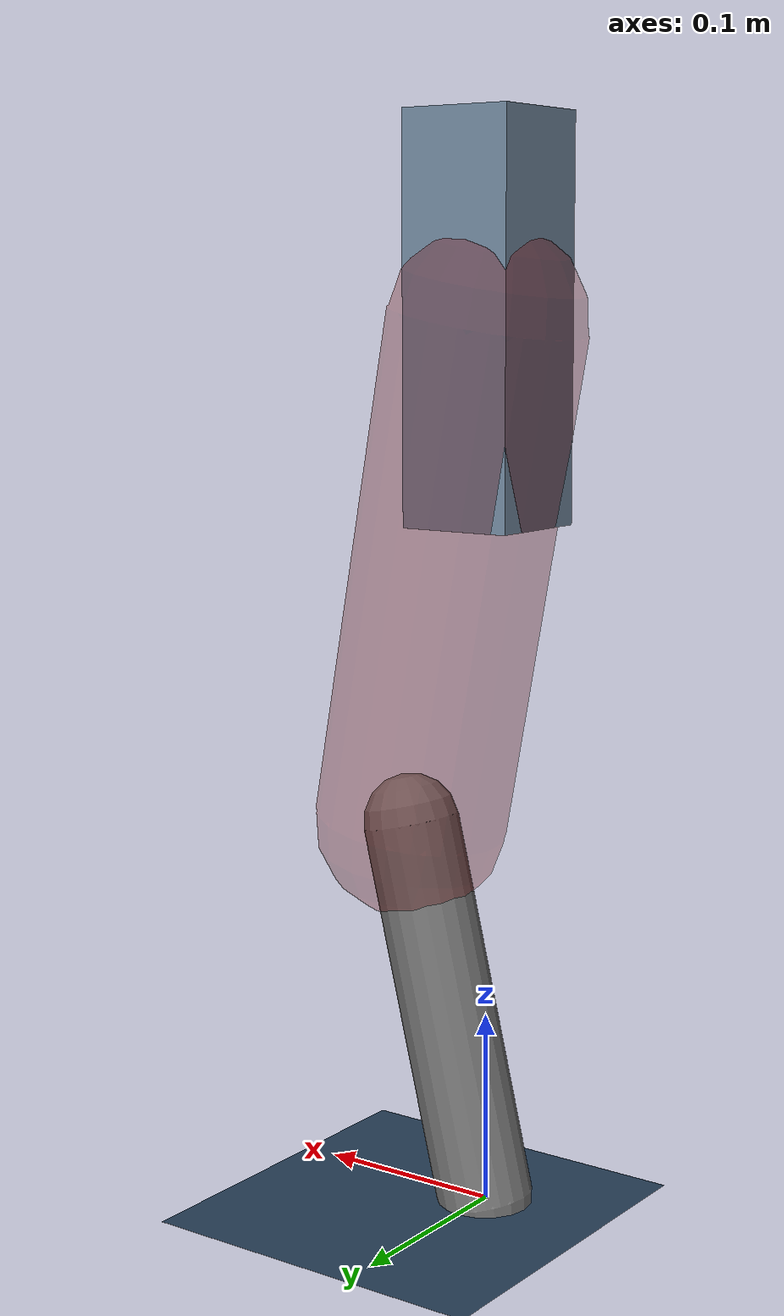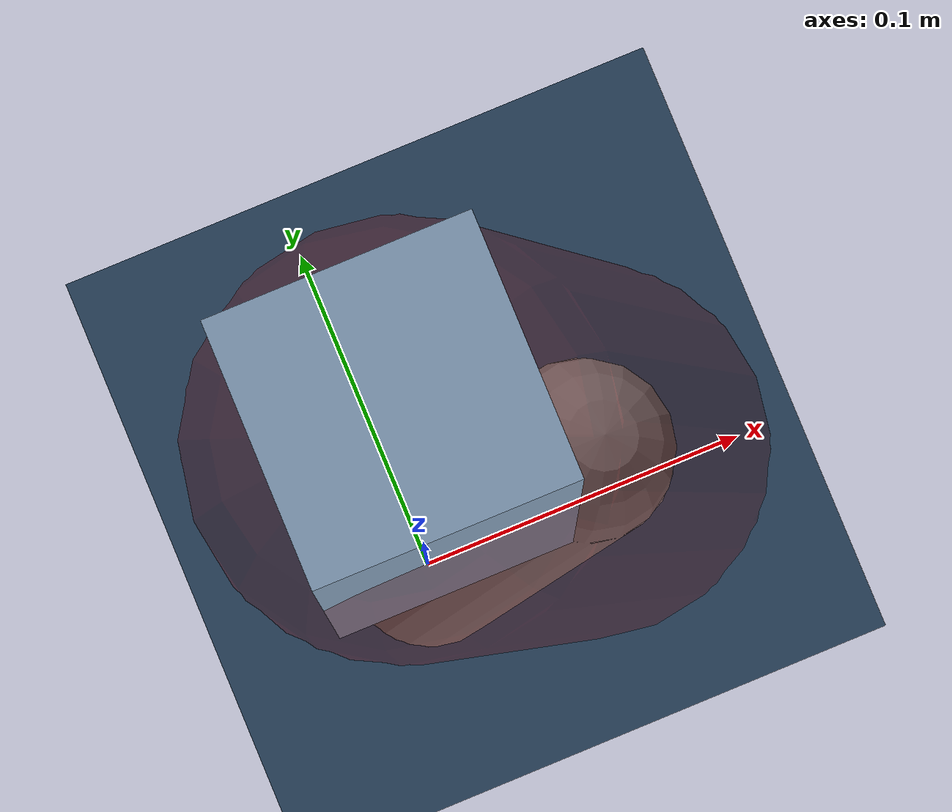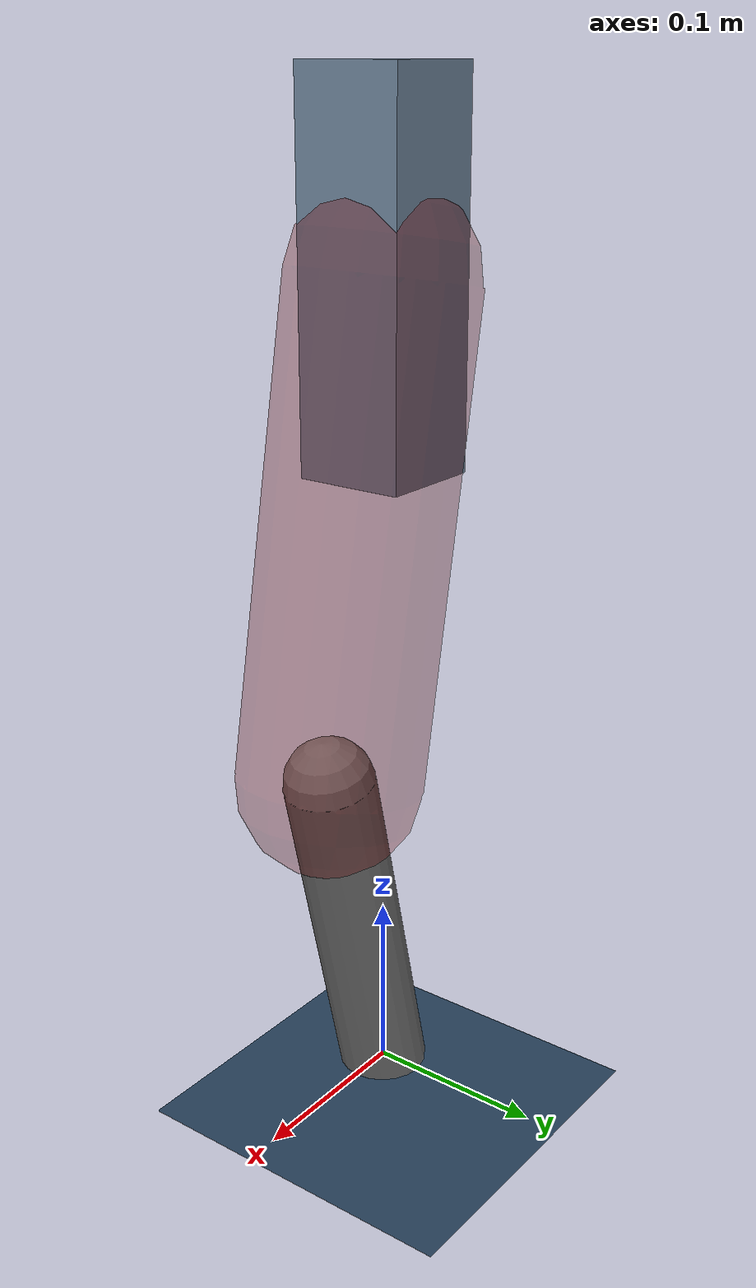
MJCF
<mujoco model="Hopper2D">
	<compiler inertiafromgeom="true" angle="radian" />
	<option timestep="0.001" integrator="implicit" cone="elliptic" solver="Newton" tolerance="1e-10" />

	<default>
		<geom contype="1" conaffinity="1" condim="3" friction="2 0.005 0.0001" solref="0.005 1" />
		<joint limited="true" damping="0.1" />
	</default>

	<asset>
		<texture name="skybox" type="skybox" builtin="gradient" rgb1=".4 .6 .8" rgb2="0 0 0" width="800" height="800" />
		<texture name="grid" type="2d" builtin="checker" rgb1=".1 .2 .3" rgb2=".2 .3 .4" width="300" height="300" mark="edge" markrgb=".2 .3 .4" />
		<material name="ground" texture="grid" texrepeat="1 1" texuniform="true" reflectance="0.1" />
		<material name="leg" rgba="0.5 0.6 0.7 1" />
	</asset>

	<worldbody>

		<geom name="floor" type="plane" size="5 5 0.25" material="ground" />

		<light directional="false" diffuse="0.8 0.8 0.8" specular="0.3 0.3 0.3" pos="0 0 2" dir="0 0 -1" />
		<light mode="targetbodycom" target="base" directional="false" diffuse="0.8 0.8 0.8" specular="0.3 0.3 0.3" pos="0 0 2" dir="0 0 -1" />

		<camera name="fixed" pos="0 -2 1" xyaxes="1 0 0 0 0 1" />
		<camera name="tracking" mode="trackcom" pos="0 -3 1" />

		<body name="root" pos="0 0 0.4533822286708039">
			<joint name="slide_x" type="slide" axis="1 0 0" range="-100 100" />
			<joint name="slide_z" type="slide" axis="0 0 1" range="0 10" />

			<body name="base" pos="0 0 0">
				<geom name="torso" type="box" size="0.03 0.03 0.1" mass="3.7299999999999995" material="leg" />

				<body name="link1" pos="0 0 0" euler="0 1.387750844381156 0">
					<joint type="hinge" axis="0 -1 0" pos="0 0 0" name="hinge1" limited="true" range="-3.14 3.14" stiffness="0" damping="0.1" />
					<geom name="thigh" type="capsule" fromto="0 0 0 0.26082606918406126 0 0" size="0.05" rgba="0.5 0 0 0.3" mass="0.8845477798785593" />

					<body name="link2" pos="0.26082606918406126 0 0" euler="0 0.41963515957615555 0">
						<joint type="hinge" axis="0 -1 0" pos="0 0 0" name="hinge2" limited="true" range="-3.14 3.14" stiffness="0" damping="0.1" />
						<geom name="shank" type="capsule" fromto="0 0 0 0.2025561594867427 0 0" size="0.025" mass="0.40304492758939414" />

					</body>
				</body>
			</body>
		</body>
	</worldbody>

	<actuator>
		<motor name="torque1" joint="hinge1" ctrlrange="-234.44237950903278 234.44237950903278" ctrllimited="true" gear="1" />
		<motor name="torque2" joint="hinge2" ctrlrange="-86.62536808458376 86.62536808458376" ctrllimited="true" gear="1" />
	</actuator>
</mujoco>
